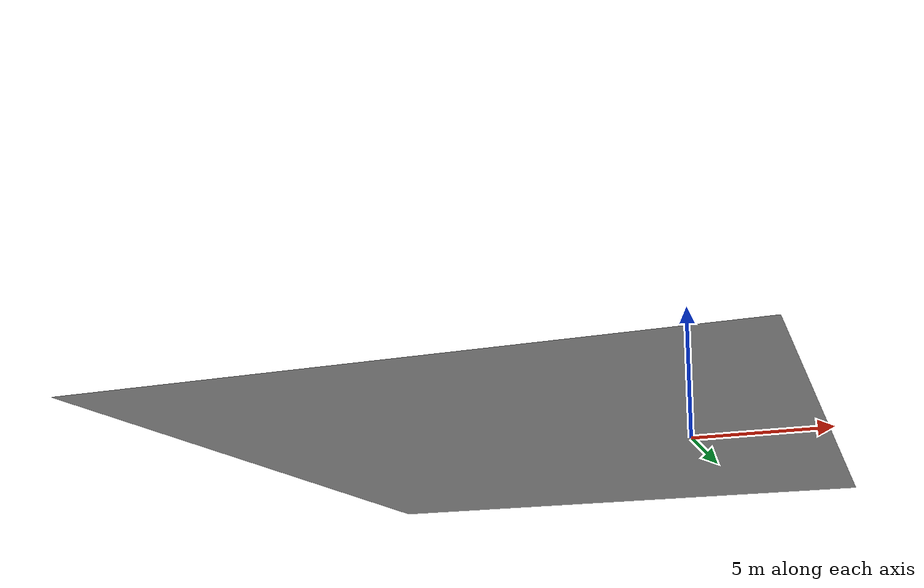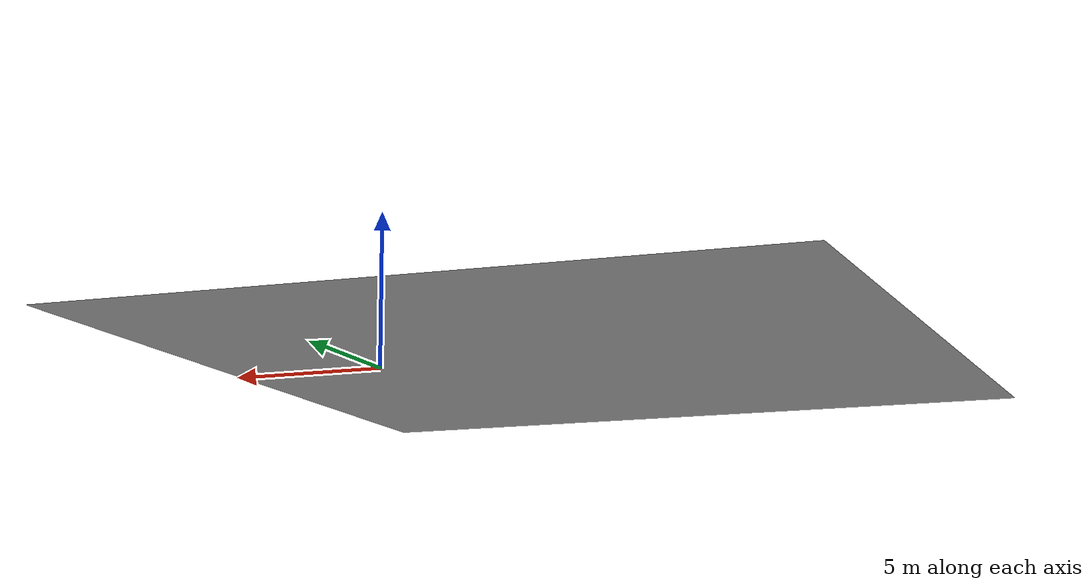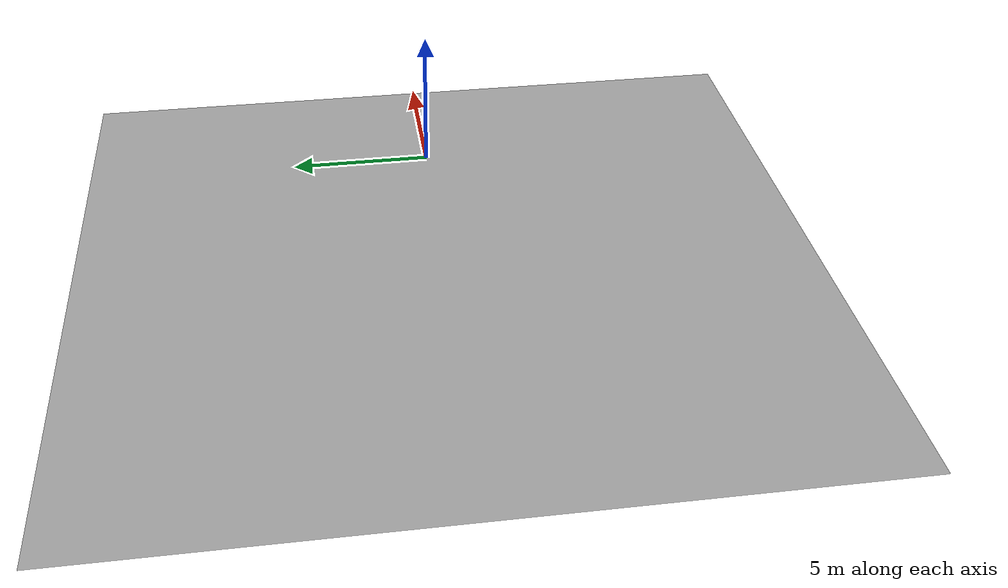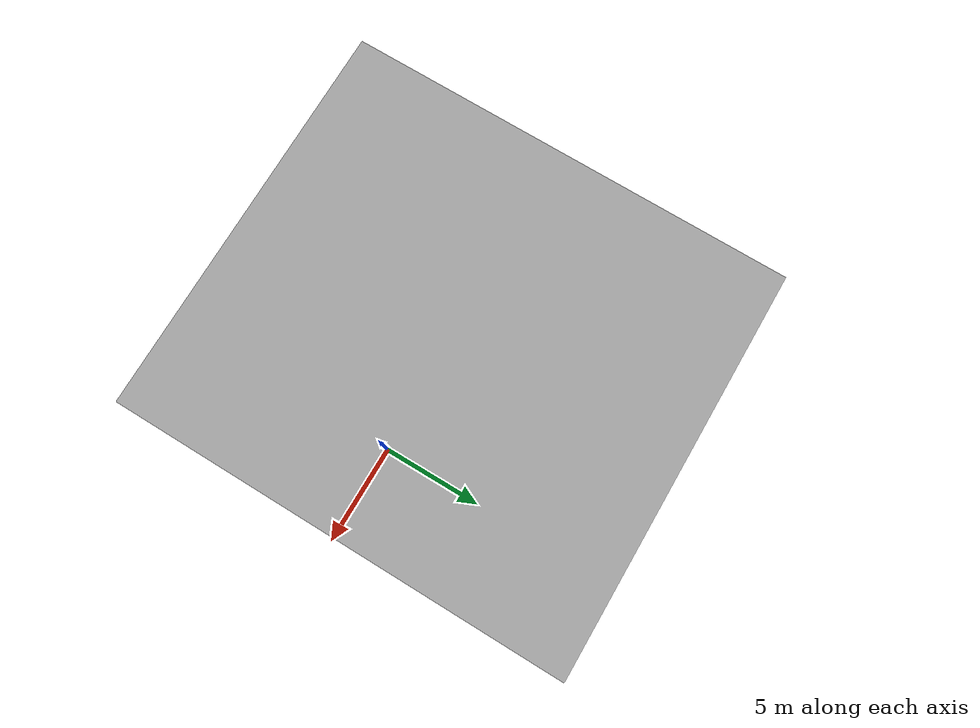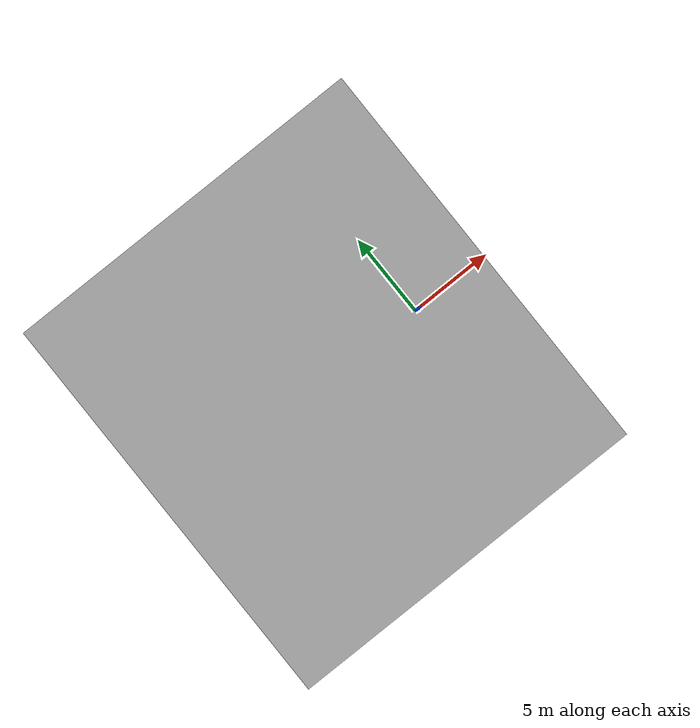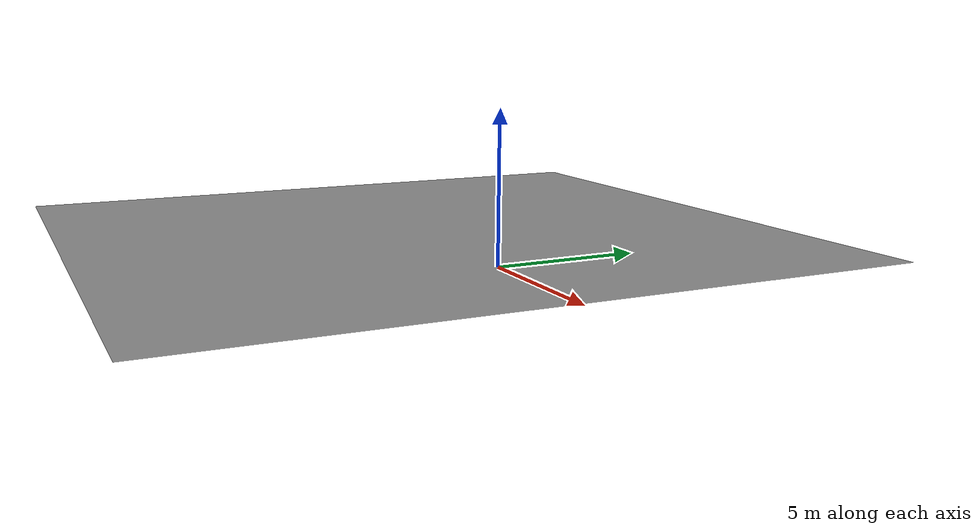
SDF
<?xml version="1.0" ?>
<sdf version="1.5">
  <model name="hospital_floor">
    <pose>0 0 0 0 0 0</pose>
    <static>true</static>
    <link name="body">
      <visual name="visual">
        <geometry>
          <mesh><uri>model://hospital_floor/media/hospital_floor.dae</uri></mesh>
        </geometry>
	      <material>
          <script>
            <uri>model://hospital_floor/media/scripts</uri>
            <uri>model://hospital_floor/media/Textures</uri>
            <name>grey_floor</name>
          </script>
        </material>
      </visual>
      <collision name="collision">
        <geometry>
          <mesh><uri>model://hospital_floor/media/hospital_floor.dae</uri></mesh>
        </geometry>
      </collision>
    </link>
  </model>
</sdf>
